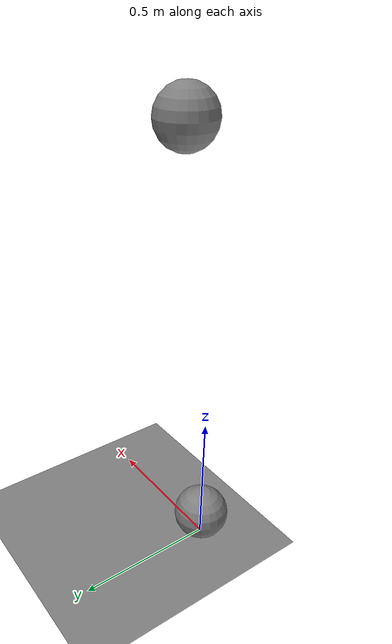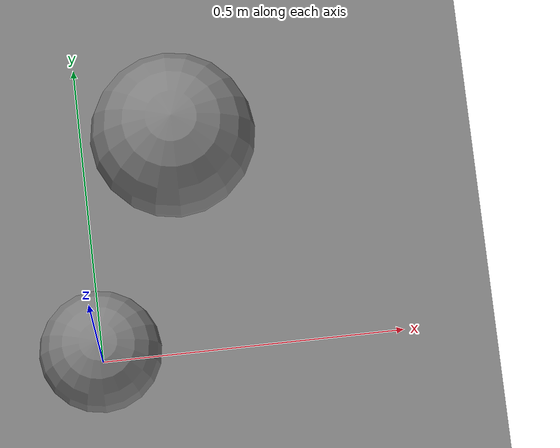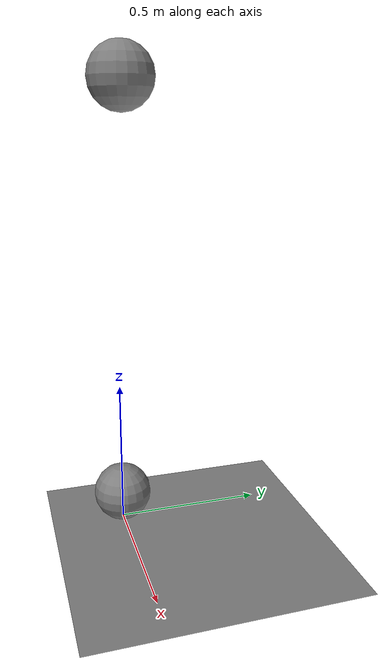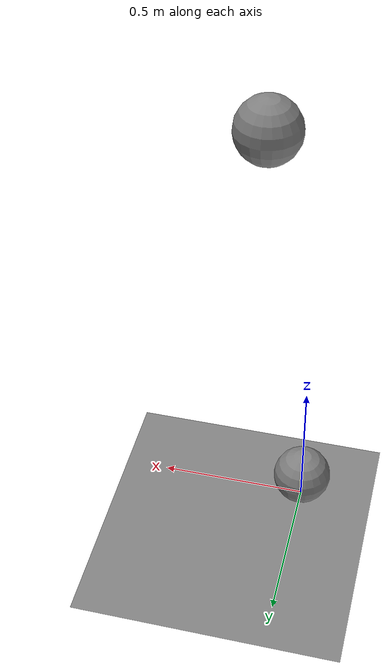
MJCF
<mujoco model="contact_wake">
        <option gravity="0 0 -9.81" timestep="0.002" sleep_tolerance="0.1">
            <flag sleep="enable"/>
        </option>
        <worldbody>
            <geom type="plane" size="5 5 0.1" solref="0.005 1.5"/>
            <body name="resting" pos="0 0 0.1" sleep="init">
                <freejoint name="resting_free"/>
                <geom type="sphere" size="0.1" mass="1.0" solref="0.005 1.5"/>
            </body>
            <body name="falling" pos="0.15 0 1.5">
                <freejoint name="falling_free"/>
                <geom type="sphere" size="0.1" mass="1.0" solref="0.005 1.5"/>
            </body>
        </worldbody>
    </mujoco>
